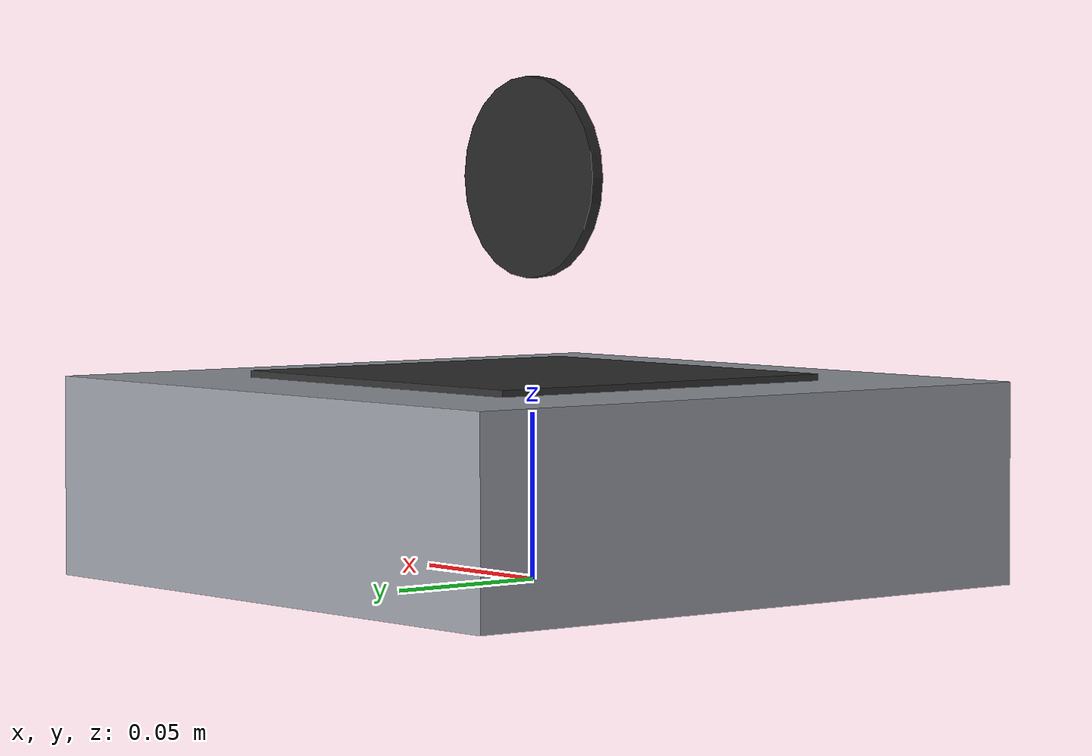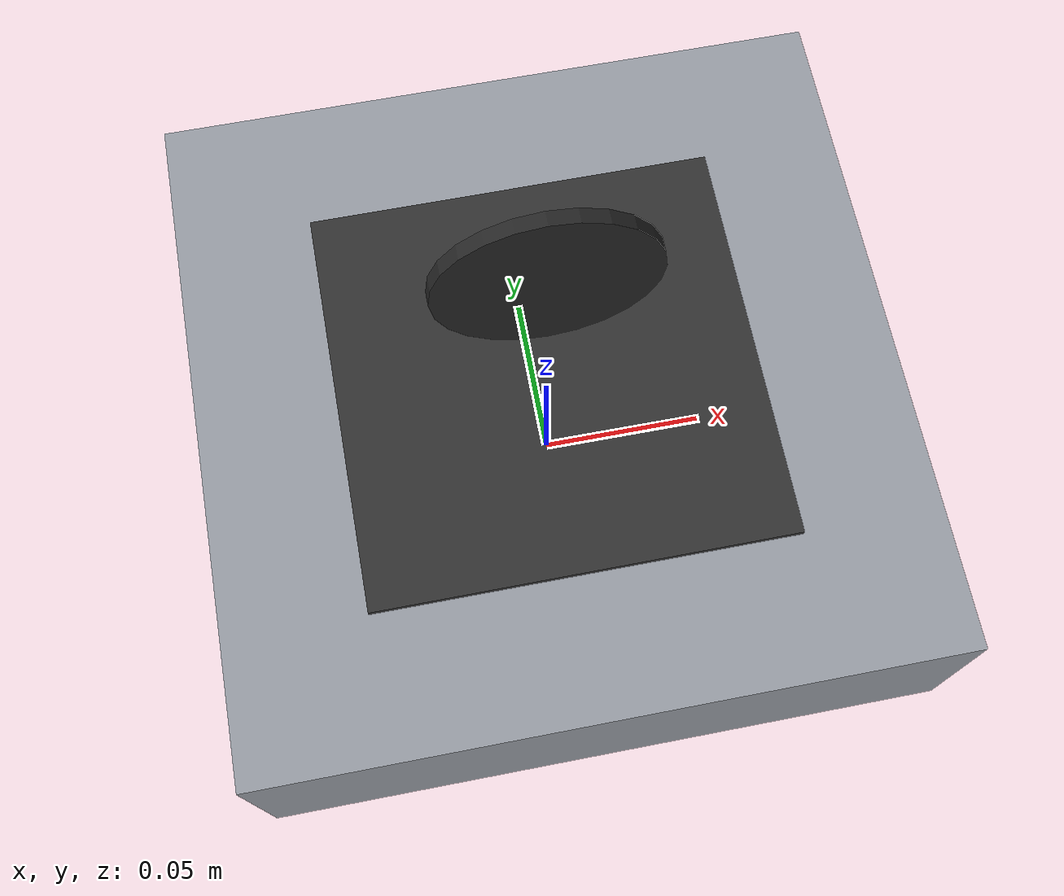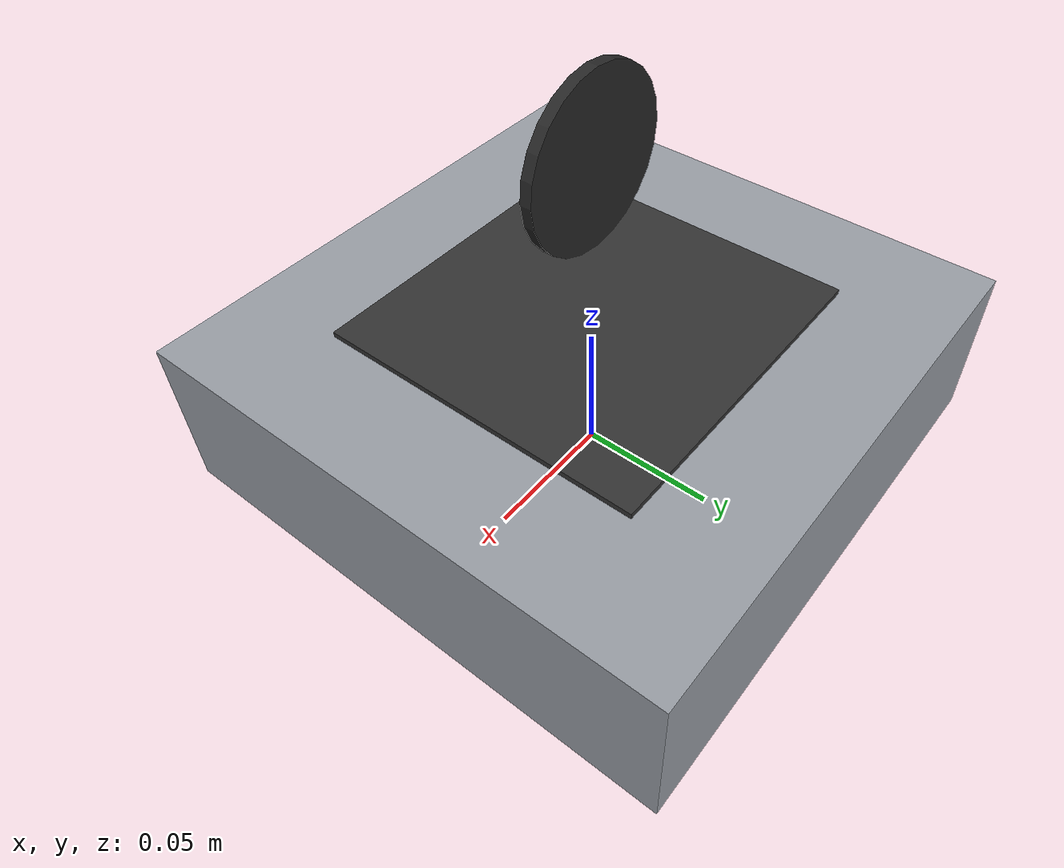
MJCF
<?xml version="1.0" encoding="utf-8"?>
<mujoco model="wafer_dicing_saw">
  <compiler angle="radian" autolimits="true"/>
  <default>
    <default class="body"><geom contype="1" conaffinity="1"/></default>
  </default>
  <worldbody>
    <body name="base">
      <geom type="box" size="0.10 0.10 0.03" pos="0 0 0.03" rgba="0.6 0.62 0.65 1" class="body"/>
      <geom type="box" size="0.06 0.06 0.001" pos="0 0 0.061" rgba="0.2 0.2 0.2 1" class="body"/>
      <body name="blade_arm" pos="0 0 0.12">
        <joint name="blade_arm_joint" type="slide" axis="1 0 0" range="-0.06 0.06" damping="1.0" frictionloss="0.3"/>
  <geom type="cylinder" size="0.03 0.002" pos="0 0 0" rgba="0.15 0.15 0.15 1" class="body" quat="0.7071068 0.7071068 0 0"/>
      </body>
    </body>
  </worldbody>
</mujoco>
